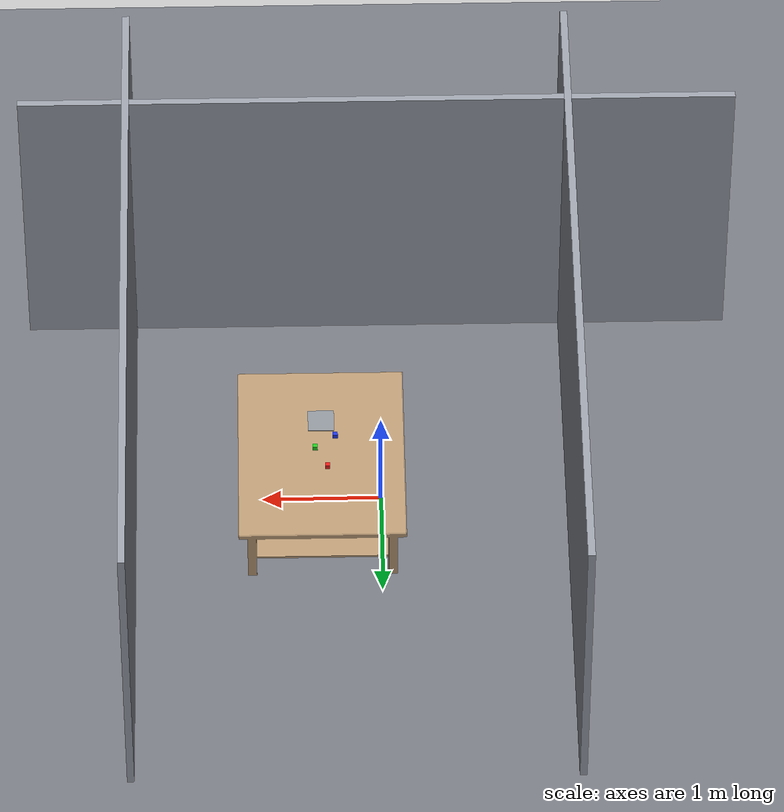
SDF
<?xml version="1.0" ?>
<sdf version="1.9">
  <world name="tabletop">

    <physics name="1ms" type="ignored">
      <max_step_size>0.001</max_step_size>
      <real_time_factor>0</real_time_factor>
    </physics>

    <plugin filename="gz-sim-physics-system" name="gz::sim::systems::Physics"/>
    <plugin filename="gz-sim-user-commands-system" name="gz::sim::systems::UserCommands"/>
    <plugin filename="gz-sim-scene-broadcaster-system" name="gz::sim::systems::SceneBroadcaster"/>
    <plugin filename="gz-sim-contact-system" name="gz::sim::systems::Contact"/>
    <!-- Required for the camera sensors in the robot description to render. -->
    <plugin filename="gz-sim-sensors-system" name="gz::sim::systems::Sensors">
      <render_engine>ogre2</render_engine>
    </plugin>

    <gravity>0 0 -9.81</gravity>

    <!-- Low ambient so the lights below actually shape the scene. High
         ambient washes everything flat, which is what made the original look
         like untextured CAD. -->
    <scene>
      <ambient>0.30 0.31 0.34 1</ambient>
      <background>0.62 0.66 0.72 1</background>
      <grid>false</grid>
      <shadows>true</shadows>
    </scene>

    <light type="directional" name="key">
      <cast_shadows>true</cast_shadows>
      <pose>0 0 10 0 0 0</pose>
      <diffuse>1.0 0.96 0.88 1</diffuse>
      <specular>0.35 0.34 0.30 1</specular>
      <attenuation>
        <range>1000</range>
        <constant>0.9</constant>
        <linear>0.01</linear>
        <quadratic>0.001</quadratic>
      </attenuation>
      <direction>-0.45 0.35 -0.82</direction>
    </light>

    <light type="directional" name="fill">
      <cast_shadows>false</cast_shadows>
      <pose>0 0 8 0 0 0</pose>
      <diffuse>0.34 0.38 0.46 1</diffuse>
      <specular>0.04 0.04 0.06 1</specular>
      <direction>0.6 -0.45 -0.5</direction>
    </light>

    <light type="point" name="overhead">
      <pose>0.5 0.0 2.3 0 0 0</pose>
      <diffuse>0.55 0.54 0.50 1</diffuse>
      <specular>0.10 0.10 0.09 1</specular>
      <attenuation>
        <range>9</range>
        <constant>0.3</constant>
        <linear>0.12</linear>
        <quadratic>0.02</quadratic>
      </attenuation>
      <cast_shadows>false</cast_shadows>
    </light>

    <model name="ground_plane">
      <static>true</static>
      <link name="link">
        <collision name="collision">
          <geometry><plane><normal>0 0 1</normal><size>20 20</size></plane></geometry>
        </collision>
        <visual name="visual">
          <geometry><plane><normal>0 0 1</normal><size>20 20</size></plane></geometry>
          <material>
            <ambient>0.30 0.30 0.33 1</ambient>
            <diffuse>0.46 0.47 0.50 1</diffuse>
            <specular>0.10 0.10 0.11 1</specular>
            <pbr>
              <metal>
                <albedo_map>model://groot_arm_description/materials/ambientcg/Concrete034/Concrete034_1K-JPG_Color.jpg</albedo_map>
                <normal_map>model://groot_arm_description/materials/ambientcg/Concrete034/Concrete034_1K-JPG_NormalGL.jpg</normal_map>
                <roughness_map>model://groot_arm_description/materials/ambientcg/Concrete034/Concrete034_1K-JPG_Roughness.jpg</roughness_map>
                <ambient_occlusion_map>model://groot_arm_description/materials/ambientcg/Concrete034/Concrete034_1K-JPG_AmbientOcclusion.jpg</ambient_occlusion_map>
                <roughness>0.9</roughness>
                <metalness>0.0</metalness>
              </metal>
            </pbr>
          </material>
        </visual>
      </link>
    </model>

    <!-- ============================ table ============================ -->
    <model name="work_table">
      <static>true</static>
      <pose>0.50 0 0 0 0 0</pose>
      <link name="link">
        <collision name="top_collision">
          <pose>0 0 0.575 0 0 0</pose>
          <geometry><box><size>1.4 1.8 0.05</size></box></geometry>
          <surface>
            <friction><ode><mu>1.0</mu><mu2>1.0</mu2></ode></friction>
          </surface>
        </collision>
      <visual name="top_visual">
        <pose>0 0 0.60 0 0 0</pose>
        <geometry><mesh><uri>model://groot_arm_description/meshes/workbench.stl</uri></mesh></geometry>
        <material>
          <ambient>0.35 0.28 0.20 1</ambient>
          <diffuse>0.72 0.60 0.45 1</diffuse>
          <specular>0.12 0.11 0.09 1</specular>
            <pbr>
              <metal>
                <albedo_map>model://groot_arm_description/materials/ambientcg/Wood062/Wood062_1K-JPG_Color.jpg</albedo_map>
                <normal_map>model://groot_arm_description/materials/ambientcg/Wood062/Wood062_1K-JPG_NormalGL.jpg</normal_map>
                <roughness_map>model://groot_arm_description/materials/ambientcg/Wood062/Wood062_1K-JPG_Roughness.jpg</roughness_map>
                <ambient_occlusion_map>model://groot_arm_description/materials/ambientcg/Wood062/Wood062_1K-JPG_AmbientOcclusion.jpg</ambient_occlusion_map>
                <roughness>0.65</roughness>
                <metalness>0.0</metalness>
              </metal>
            </pbr>
        </material>
      </visual>
        <collision name="leg_collision">
          <pose>0 0 0.275 0 0 0</pose>
          <geometry><box><size>1.2 1.6 0.55</size></box></geometry>
        </collision>
      <!-- legs and apron are part of workbench.stl above -->
      </link>
    </model>

    <!-- Back wall: gives the cameras a bounded scene instead of grey void,
         which also makes the VLA's visual context less ambiguous. -->
    <model name="wall_far">
      <static>true</static>
      <pose>2.1 0 1.4 0 0 0</pose>
      <link name="link">
        <visual name="visual">
          <geometry><box><size>0.06 6.0 2.8</size></box></geometry>
          <material>
            <ambient>0.40 0.42 0.45 1</ambient>
            <diffuse>0.60 0.62 0.66 1</diffuse>
            <specular>0.03 0.03 0.03 1</specular>
            <pbr>
              <metal>
                <albedo_map>model://groot_arm_description/materials/ambientcg/Plaster001/Plaster001_1K-JPG_Color.jpg</albedo_map>
                <normal_map>model://groot_arm_description/materials/ambientcg/Plaster001/Plaster001_1K-JPG_NormalGL.jpg</normal_map>
                <roughness_map>model://groot_arm_description/materials/ambientcg/Plaster001/Plaster001_1K-JPG_Roughness.jpg</roughness_map>
                <ambient_occlusion_map>model://groot_arm_description/materials/ambientcg/Plaster001/Plaster001_1K-JPG_AmbientOcclusion.jpg</ambient_occlusion_map>
                <roughness>0.95</roughness>
                <metalness>0.0</metalness>
              </metal>
            </pbr>
          </material>
        </visual>
        <collision name="collision">
          <geometry><box><size>0.06 6.0 2.8</size></box></geometry>
        </collision>
      </link>
    </model>

    <model name="wall_right">
      <static>true</static>
      <pose>0 -2.0 1.4 0 0 0</pose>
      <link name="link">
        <visual name="visual">
          <geometry><box><size>6.0 0.06 2.8</size></box></geometry>
          <material>
            <ambient>0.40 0.42 0.45 1</ambient>
            <diffuse>0.60 0.62 0.66 1</diffuse>
            <specular>0.03 0.03 0.03 1</specular>
            <pbr>
              <metal>
                <albedo_map>model://groot_arm_description/materials/ambientcg/Plaster001/Plaster001_1K-JPG_Color.jpg</albedo_map>
                <normal_map>model://groot_arm_description/materials/ambientcg/Plaster001/Plaster001_1K-JPG_NormalGL.jpg</normal_map>
                <roughness_map>model://groot_arm_description/materials/ambientcg/Plaster001/Plaster001_1K-JPG_Roughness.jpg</roughness_map>
                <ambient_occlusion_map>model://groot_arm_description/materials/ambientcg/Plaster001/Plaster001_1K-JPG_AmbientOcclusion.jpg</ambient_occlusion_map>
                <roughness>0.95</roughness>
                <metalness>0.0</metalness>
              </metal>
            </pbr>
          </material>
        </visual>
        <collision name="collision">
          <geometry><box><size>6.0 0.06 2.8</size></box></geometry>
        </collision>
      </link>
    </model>

    <model name="wall_back">
      <static>true</static>
      <pose>-1.6 0 1.4 0 0 0</pose>
      <link name="link">
        <visual name="visual">
          <geometry><box><size>0.06 6.0 2.8</size></box></geometry>
          <material>
            <ambient>0.40 0.42 0.45 1</ambient>
            <diffuse>0.60 0.62 0.66 1</diffuse>
            <specular>0.03 0.03 0.03 1</specular>
            <pbr>
              <metal>
                <albedo_map>model://groot_arm_description/materials/ambientcg/Plaster001/Plaster001_1K-JPG_Color.jpg</albedo_map>
                <normal_map>model://groot_arm_description/materials/ambientcg/Plaster001/Plaster001_1K-JPG_NormalGL.jpg</normal_map>
                <roughness_map>model://groot_arm_description/materials/ambientcg/Plaster001/Plaster001_1K-JPG_Roughness.jpg</roughness_map>
                <ambient_occlusion_map>model://groot_arm_description/materials/ambientcg/Plaster001/Plaster001_1K-JPG_AmbientOcclusion.jpg</ambient_occlusion_map>
                <roughness>0.95</roughness>
                <metalness>0.0</metalness>
              </metal>
            </pbr>
          </material>
        </visual>
        <collision name="collision">
          <geometry><box><size>0.06 6.0 2.8</size></box></geometry>
        </collision>
      </link>
    </model>

    <!-- ============================ cubes ============================ -->
    <!-- Each cube is a separate model so it can be reset/respawned per episode
         by groot_vla's scene_manager. -->
    <model name="red_cube">
      <pose>0.45 0.16 0.62 0 0 0</pose>
      <link name="link">
        <inertial>
          <mass>0.05</mass>
          <inertia><ixx>1.33e-5</ixx><iyy>1.33e-5</iyy><izz>1.33e-5</izz>
                   <ixy>0</ixy><ixz>0</ixz><iyz>0</iyz></inertia>
        </inertial>
        <collision name="collision">
          <geometry><box><size>0.04 0.04 0.04</size></box></geometry>
          <surface>
            <friction><ode><mu>2.0</mu><mu2>2.0</mu2></ode></friction>
            <contact><ode><kp>1e6</kp><kd>1e3</kd><min_depth>0.001</min_depth></ode></contact>
          </surface>
        </collision>
        <visual name="visual">
          <geometry><box><size>0.04 0.04 0.04</size></box></geometry>
          <material>
            <ambient>0.5 0.05 0.05 1</ambient>
            <diffuse>0.9 0.1 0.1 1</diffuse>
            <specular>0.35 0.35 0.35 1</specular>
            <pbr>
              <metal>
                <roughness>0.35</roughness>
                <metalness>0.0</metalness>
              </metal>
            </pbr>
          </material>
        </visual>
      </link>
    </model>

    <model name="green_cube">
      <pose>0.55 -0.05 0.62 0 0 0</pose>
      <link name="link">
        <inertial>
          <mass>0.05</mass>
          <inertia><ixx>1.33e-5</ixx><iyy>1.33e-5</iyy><izz>1.33e-5</izz>
                   <ixy>0</ixy><ixz>0</ixz><iyz>0</iyz></inertia>
        </inertial>
        <collision name="collision">
          <geometry><box><size>0.04 0.04 0.04</size></box></geometry>
          <surface>
            <friction><ode><mu>2.0</mu><mu2>2.0</mu2></ode></friction>
            <contact><ode><kp>1e6</kp><kd>1e3</kd><min_depth>0.001</min_depth></ode></contact>
          </surface>
        </collision>
        <visual name="visual">
          <geometry><box><size>0.04 0.04 0.04</size></box></geometry>
          <material>
            <ambient>0.05 0.4 0.05 1</ambient>
            <diffuse>0.1 0.8 0.1 1</diffuse>
            <specular>0.35 0.35 0.35 1</specular>
            <pbr>
              <metal>
                <roughness>0.35</roughness>
                <metalness>0.0</metalness>
              </metal>
            </pbr>
          </material>
        </visual>
      </link>
    </model>

    <model name="blue_cube">
      <pose>0.38 -0.18 0.62 0 0 0</pose>
      <link name="link">
        <inertial>
          <mass>0.05</mass>
          <inertia><ixx>1.33e-5</ixx><iyy>1.33e-5</iyy><izz>1.33e-5</izz>
                   <ixy>0</ixy><ixz>0</ixz><iyz>0</iyz></inertia>
        </inertial>
        <collision name="collision">
          <geometry><box><size>0.04 0.04 0.04</size></box></geometry>
          <surface>
            <friction><ode><mu>2.0</mu><mu2>2.0</mu2></ode></friction>
            <contact><ode><kp>1e6</kp><kd>1e3</kd><min_depth>0.001</min_depth></ode></contact>
          </surface>
        </collision>
        <visual name="visual">
          <geometry><box><size>0.04 0.04 0.04</size></box></geometry>
          <material>
            <ambient>0.05 0.05 0.5 1</ambient>
            <diffuse>0.1 0.2 0.9 1</diffuse>
            <specular>0.35 0.35 0.35 1</specular>
            <pbr>
              <metal>
                <roughness>0.35</roughness>
                <metalness>0.0</metalness>
              </metal>
            </pbr>
          </material>
        </visual>
      </link>
    </model>

    <!-- ======================== target tray ========================= -->
    <model name="tray">
      <static>true</static>
      <pose>0.5 -0.35 0.6 0 0 0</pose>
      <link name="link">
        <visual name="base_visual">
          <pose>0 0 0.005 0 0 0</pose>
          <geometry><box><size>0.22 0.22 0.01</size></box></geometry>
          <material>
            <ambient>0.22 0.23 0.25 1</ambient>
            <diffuse>0.55 0.57 0.60 1</diffuse>
            <specular>0.60 0.60 0.62 1</specular>
            <pbr>
              <metal>
                <albedo_map>model://groot_arm_description/materials/ambientcg/Metal032/Metal032_1K-JPG_Color.jpg</albedo_map>
                <normal_map>model://groot_arm_description/materials/ambientcg/Metal032/Metal032_1K-JPG_NormalGL.jpg</normal_map>
                <roughness_map>model://groot_arm_description/materials/ambientcg/Metal032/Metal032_1K-JPG_Roughness.jpg</roughness_map>
                <ambient_occlusion_map>model://groot_arm_description/materials/ambientcg/Metal032/Metal032_1K-JPG_AmbientOcclusion.jpg</ambient_occlusion_map>
                <roughness>0.3</roughness>
                <metalness>0.9</metalness>
              </metal>
            </pbr>
          </material>
        </visual>
        <collision name="base_collision">
          <pose>0 0 0.005 0 0 0</pose>
          <geometry><box><size>0.22 0.22 0.01</size></box></geometry>
        </collision>
      </link>
    </model>

  </world>
</sdf>
